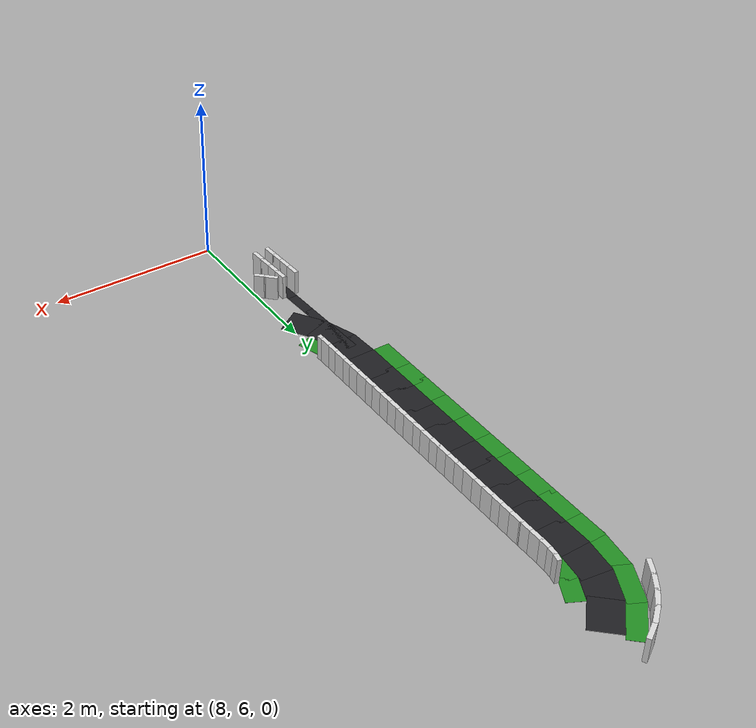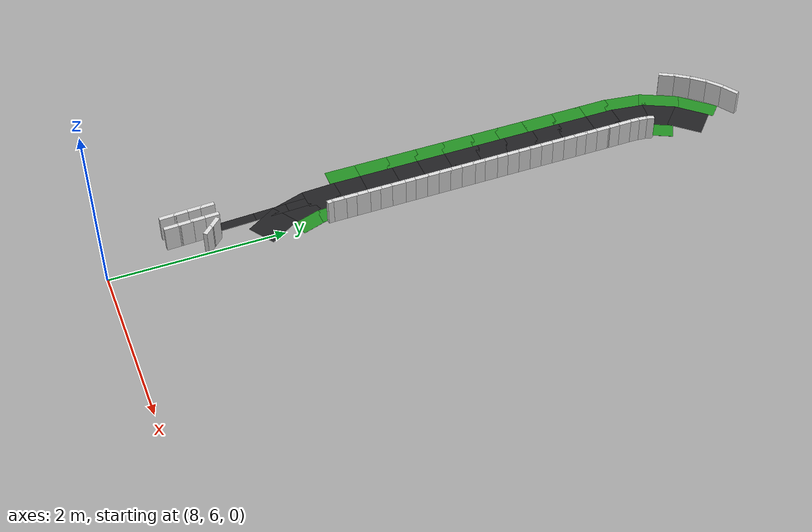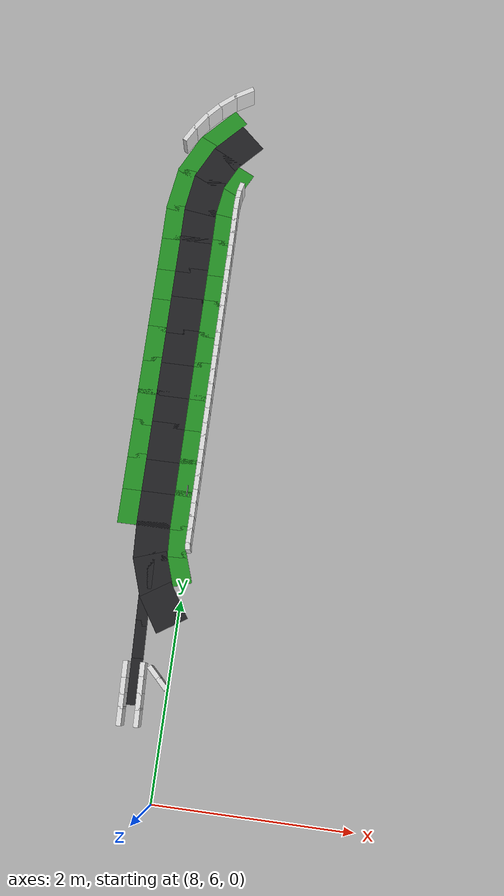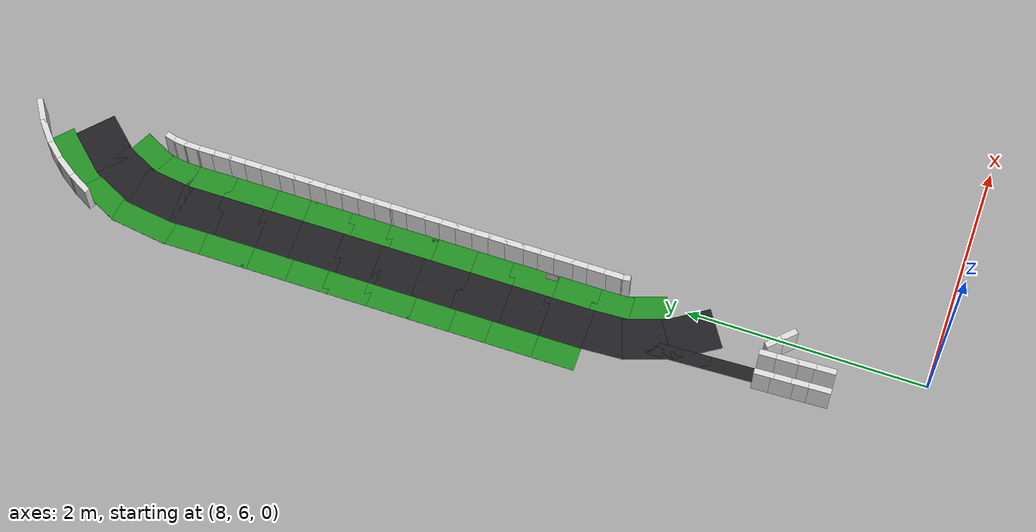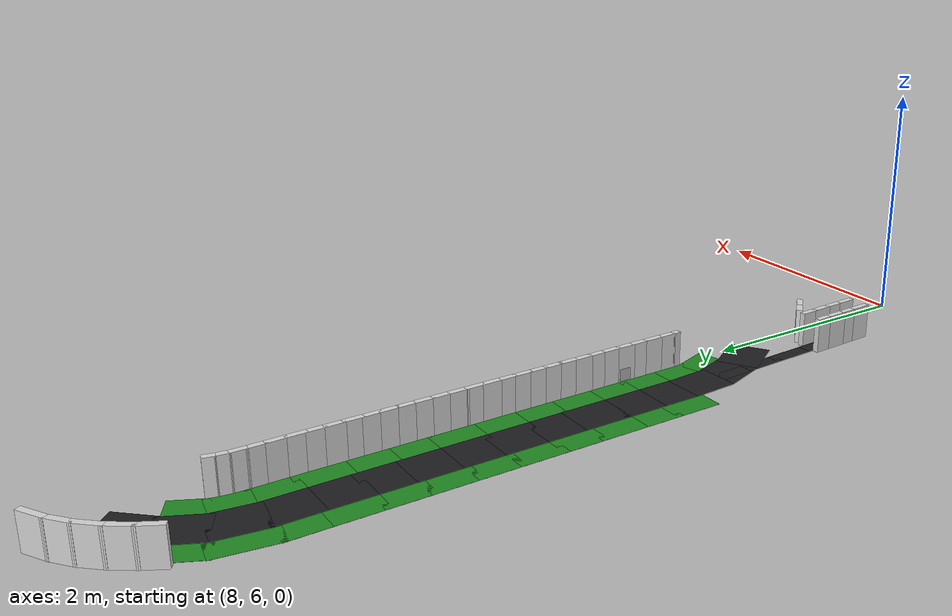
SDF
<sdf version="1.8">
 <world name="it_arena_track">
  <model name="it_arena_track_static">
   <static>true</static>
   <link name="surface_main_24">
    <pose>7.9023 13.0302 0.0015 0 0 -2.31350</pose>
    <collision name="surface_main_24_col">
     <geometry><box><size>0.4117 0.3500 0.0030</size></box></geometry>
    </collision>
    <visual name="surface_main_24_vis">
     <geometry><box><size>0.4117 0.3500 0.0030</size></box></geometry>
     <material><ambient>0.12 0.12 0.13 1</ambient><diffuse>0.12 0.12 0.13 1</diffuse></material>
    </visual>
   </link>
   <link name="surface_main_25">
    <pose>7.7069 12.7462 0.0015 0 0 -2.02534</pose>
    <collision name="surface_main_25_col">
     <geometry><box><size>0.3897 0.3500 0.0030</size></box></geometry>
    </collision>
    <visual name="surface_main_25_vis">
     <geometry><box><size>0.3897 0.3500 0.0030</size></box></geometry>
     <material><ambient>0.12 0.12 0.13 1</ambient><diffuse>0.12 0.12 0.13 1</diffuse></material>
    </visual>
   </link>
   <link name="surface_main_26">
    <pose>7.6086 12.4162 0.0015 0 0 -1.70455</pose>
    <collision name="surface_main_26_col">
     <geometry><box><size>0.4124 0.3500 0.0030</size></box></geometry>
    </collision>
    <visual name="surface_main_26_vis">
     <geometry><box><size>0.4124 0.3500 0.0030</size></box></geometry>
     <material><ambient>0.12 0.12 0.13 1</ambient><diffuse>0.12 0.12 0.13 1</diffuse></material>
    </visual>
   </link>
   <link name="surface_main_27">
    <pose>7.5864 12.0686 0.0015 0 0 -1.56032</pose>
    <collision name="surface_main_27_col">
     <geometry><box><size>0.3909 0.3500 0.0030</size></box></geometry>
    </collision>
    <visual name="surface_main_27_vis">
     <geometry><box><size>0.3909 0.3500 0.0030</size></box></geometry>
     <material><ambient>0.12 0.12 0.13 1</ambient><diffuse>0.12 0.12 0.13 1</diffuse></material>
    </visual>
   </link>
   <link name="surface_main_28">
    <pose>7.5890 11.7186 0.0015 0 0 -1.56635</pose>
    <collision name="surface_main_28_col">
     <geometry><box><size>0.4140 0.3500 0.0030</size></box></geometry>
    </collision>
    <visual name="surface_main_28_vis">
     <geometry><box><size>0.4140 0.3500 0.0030</size></box></geometry>
     <material><ambient>0.12 0.12 0.13 1</ambient><diffuse>0.12 0.12 0.13 1</diffuse></material>
    </visual>
   </link>
   <link name="surface_main_29">
    <pose>7.5905 11.3687 0.0015 0 0 -1.56650</pose>
    <collision name="surface_main_29_col">
     <geometry><box><size>0.3910 0.3500 0.0030</size></box></geometry>
    </collision>
    <visual name="surface_main_29_vis">
     <geometry><box><size>0.3910 0.3500 0.0030</size></box></geometry>
     <material><ambient>0.12 0.12 0.13 1</ambient><diffuse>0.12 0.12 0.13 1</diffuse></material>
    </visual>
   </link>
   <link name="surface_main_30">
    <pose>7.5920 11.0187 0.0015 0 0 -1.56652</pose>
    <collision name="surface_main_30_col">
     <geometry><box><size>0.4140 0.3500 0.0030</size></box></geometry>
    </collision>
    <visual name="surface_main_30_vis">
     <geometry><box><size>0.4140 0.3500 0.0030</size></box></geometry>
     <material><ambient>0.12 0.12 0.13 1</ambient><diffuse>0.12 0.12 0.13 1</diffuse></material>
    </visual>
   </link>
   <link name="surface_main_31">
    <pose>7.5935 10.6688 0.0015 0 0 -1.56650</pose>
    <collision name="surface_main_31_col">
     <geometry><box><size>0.3910 0.3500 0.0030</size></box></geometry>
    </collision>
    <visual name="surface_main_31_vis">
     <geometry><box><size>0.3910 0.3500 0.0030</size></box></geometry>
     <material><ambient>0.12 0.12 0.13 1</ambient><diffuse>0.12 0.12 0.13 1</diffuse></material>
    </visual>
   </link>
   <link name="surface_main_32">
    <pose>7.5950 10.3188 0.0015 0 0 -1.56652</pose>
    <collision name="surface_main_32_col">
     <geometry><box><size>0.4140 0.3500 0.0030</size></box></geometry>
    </collision>
    <visual name="surface_main_32_vis">
     <geometry><box><size>0.4140 0.3500 0.0030</size></box></geometry>
     <material><ambient>0.12 0.12 0.13 1</ambient><diffuse>0.12 0.12 0.13 1</diffuse></material>
    </visual>
   </link>
   <link name="surface_main_33">
    <pose>7.5965 9.9688 0.0015 0 0 -1.56650</pose>
    <collision name="surface_main_33_col">
     <geometry><box><size>0.3910 0.3500 0.0030</size></box></geometry>
    </collision>
    <visual name="surface_main_33_vis">
     <geometry><box><size>0.3910 0.3500 0.0030</size></box></geometry>
     <material><ambient>0.12 0.12 0.13 1</ambient><diffuse>0.12 0.12 0.13 1</diffuse></material>
    </visual>
   </link>
   <link name="surface_main_34">
    <pose>7.5981 9.6189 0.0015 0 0 -1.56636</pose>
    <collision name="surface_main_34_col">
     <geometry><box><size>0.4140 0.3500 0.0030</size></box></geometry>
    </collision>
    <visual name="surface_main_34_vis">
     <geometry><box><size>0.4140 0.3500 0.0030</size></box></geometry>
     <material><ambient>0.12 0.12 0.13 1</ambient><diffuse>0.12 0.12 0.13 1</diffuse></material>
    </visual>
   </link>
   <link name="surface_main_35">
    <pose>7.5996 9.2689 0.0015 0 0 -1.56638</pose>
    <collision name="surface_main_35_col">
     <geometry><box><size>0.3910 0.3500 0.0030</size></box></geometry>
    </collision>
    <visual name="surface_main_35_vis">
     <geometry><box><size>0.3910 0.3500 0.0030</size></box></geometry>
     <material><ambient>0.12 0.12 0.13 1</ambient><diffuse>0.12 0.12 0.13 1</diffuse></material>
    </visual>
   </link>
   <link name="surface_main_36">
    <pose>7.6011 8.9190 0.0015 0 0 -1.56652</pose>
    <collision name="surface_main_36_col">
     <geometry><box><size>0.4140 0.3500 0.0030</size></box></geometry>
    </collision>
    <visual name="surface_main_36_vis">
     <geometry><box><size>0.4140 0.3500 0.0030</size></box></geometry>
     <material><ambient>0.12 0.12 0.13 1</ambient><diffuse>0.12 0.12 0.13 1</diffuse></material>
    </visual>
   </link>
   <link name="surface_main_37">
    <pose>7.6108 8.5697 0.0015 0 0 -1.51822</pose>
    <collision name="surface_main_37_col">
     <geometry><box><size>0.3898 0.3500 0.0030</size></box></geometry>
    </collision>
    <visual name="surface_main_37_vis">
     <geometry><box><size>0.3898 0.3500 0.0030</size></box></geometry>
     <material><ambient>0.12 0.12 0.13 1</ambient><diffuse>0.12 0.12 0.13 1</diffuse></material>
    </visual>
   </link>
   <link name="surface_main_38">
    <pose>7.6775 8.2305 0.0015 0 0 -1.24318</pose>
    <collision name="surface_main_38_col">
     <geometry><box><size>0.4128 0.3500 0.0030</size></box></geometry>
    </collision>
    <visual name="surface_main_38_vis">
     <geometry><box><size>0.4128 0.3500 0.0030</size></box></geometry>
     <material><ambient>0.12 0.12 0.13 1</ambient><diffuse>0.12 0.12 0.13 1</diffuse></material>
    </visual>
   </link>
   <link name="surface_main_39">
    <pose>7.8331 7.9101 0.0015 0 0 -0.99422</pose>
    <collision name="surface_main_39_col">
     <geometry><box><size>0.4129 0.3500 0.0030</size></box></geometry>
    </collision>
    <visual name="surface_main_39_vis">
     <geometry><box><size>0.4129 0.3500 0.0030</size></box></geometry>
     <material><ambient>0.12 0.12 0.13 1</ambient><diffuse>0.12 0.12 0.13 1</diffuse></material>
    </visual>
   </link>
   <link name="surface_branch0_0">
    <pose>7.6114 8.3097 0.0015 0 0 -1.52892</pose>
    <collision name="surface_branch0_0_col">
     <geometry><box><size>0.4623 0.1200 0.0030</size></box></geometry>
    </collision>
    <visual name="surface_branch0_0_vis">
     <geometry><box><size>0.4623 0.1200 0.0030</size></box></geometry>
     <material><ambient>0.12 0.12 0.13 1</ambient><diffuse>0.12 0.12 0.13 1</diffuse></material>
    </visual>
   </link>
   <link name="surface_branch0_1">
    <pose>7.6276 7.9180 0.0015 0 0 -1.53010</pose>
    <collision name="surface_branch0_1_col">
     <geometry><box><size>0.4392 0.1200 0.0030</size></box></geometry>
    </collision>
    <visual name="surface_branch0_1_vis">
     <geometry><box><size>0.4392 0.1200 0.0030</size></box></geometry>
     <material><ambient>0.12 0.12 0.13 1</ambient><diffuse>0.12 0.12 0.13 1</diffuse></material>
    </visual>
   </link>
   <link name="surface_branch0_2">
    <pose>7.6432 7.5364 0.0015 0 0 -1.52997</pose>
    <collision name="surface_branch0_2_col">
     <geometry><box><size>0.4392 0.1200 0.0030</size></box></geometry>
    </collision>
    <visual name="surface_branch0_2_vis">
     <geometry><box><size>0.4392 0.1200 0.0030</size></box></geometry>
     <material><ambient>0.12 0.12 0.13 1</ambient><diffuse>0.12 0.12 0.13 1</diffuse></material>
    </visual>
   </link>
   <link name="surface_branch0_3">
    <pose>7.6594 7.1448 0.0015 0 0 -1.52892</pose>
    <collision name="surface_branch0_3_col">
     <geometry><box><size>0.4623 0.1200 0.0030</size></box></geometry>
    </collision>
    <visual name="surface_branch0_3_vis">
     <geometry><box><size>0.4623 0.1200 0.0030</size></box></geometry>
     <material><ambient>0.12 0.12 0.13 1</ambient><diffuse>0.12 0.12 0.13 1</diffuse></material>
    </visual>
   </link>
   <link name="grass_main_left_25">
    <pose>7.9540 12.6316 0.0010 0 0 -2.03128</pose>
    <collision name="grass_main_left_25_col">
     <geometry><box><size>0.3021 0.2000 0.0020</size></box></geometry>
    </collision>
    <visual name="grass_main_left_25_vis">
     <geometry><box><size>0.3021 0.2000 0.0020</size></box></geometry>
     <material><ambient>0.13 0.55 0.13 1</ambient><diffuse>0.13 0.55 0.13 1</diffuse></material>
    </visual>
   </link>
   <link name="grass_main_left_26">
    <pose>7.8776 12.3746 0.0010 0 0 -1.69908</pose>
    <collision name="grass_main_left_26_col">
     <geometry><box><size>0.3232 0.2000 0.0020</size></box></geometry>
    </collision>
    <visual name="grass_main_left_26_vis">
     <geometry><box><size>0.3232 0.2000 0.0020</size></box></geometry>
     <material><ambient>0.13 0.55 0.13 1</ambient><diffuse>0.13 0.55 0.13 1</diffuse></material>
    </visual>
   </link>
   <link name="grass_main_left_27">
    <pose>7.8614 12.0678 0.0010 0 0 -1.56012</pose>
    <collision name="grass_main_left_27_col">
     <geometry><box><size>0.3852 0.2000 0.0020</size></box></geometry>
    </collision>
    <visual name="grass_main_left_27_vis">
     <geometry><box><size>0.3852 0.2000 0.0020</size></box></geometry>
     <material><ambient>0.13 0.55 0.13 1</ambient><diffuse>0.13 0.55 0.13 1</diffuse></material>
    </visual>
   </link>
   <link name="grass_main_left_28">
    <pose>7.8640 11.7200 0.0010 0 0 -1.56635</pose>
    <collision name="grass_main_left_28_col">
     <geometry><box><size>0.4146 0.2000 0.0020</size></box></geometry>
    </collision>
    <visual name="grass_main_left_28_vis">
     <geometry><box><size>0.4146 0.2000 0.0020</size></box></geometry>
     <material><ambient>0.13 0.55 0.13 1</ambient><diffuse>0.13 0.55 0.13 1</diffuse></material>
    </visual>
   </link>
   <link name="grass_main_left_29">
    <pose>7.8655 11.3698 0.0010 0 0 -1.56650</pose>
    <collision name="grass_main_left_29_col">
     <geometry><box><size>0.3910 0.2000 0.0020</size></box></geometry>
    </collision>
    <visual name="grass_main_left_29_vis">
     <geometry><box><size>0.3910 0.2000 0.0020</size></box></geometry>
     <material><ambient>0.13 0.55 0.13 1</ambient><diffuse>0.13 0.55 0.13 1</diffuse></material>
    </visual>
   </link>
   <link name="grass_main_left_30">
    <pose>7.8670 11.0198 0.0010 0 0 -1.56652</pose>
    <collision name="grass_main_left_30_col">
     <geometry><box><size>0.4140 0.2000 0.0020</size></box></geometry>
    </collision>
    <visual name="grass_main_left_30_vis">
     <geometry><box><size>0.4140 0.2000 0.0020</size></box></geometry>
     <material><ambient>0.13 0.55 0.13 1</ambient><diffuse>0.13 0.55 0.13 1</diffuse></material>
    </visual>
   </link>
   <link name="grass_main_left_31">
    <pose>7.8685 10.6699 0.0010 0 0 -1.56650</pose>
    <collision name="grass_main_left_31_col">
     <geometry><box><size>0.3910 0.2000 0.0020</size></box></geometry>
    </collision>
    <visual name="grass_main_left_31_vis">
     <geometry><box><size>0.3910 0.2000 0.0020</size></box></geometry>
     <material><ambient>0.13 0.55 0.13 1</ambient><diffuse>0.13 0.55 0.13 1</diffuse></material>
    </visual>
   </link>
   <link name="grass_main_left_32">
    <pose>7.8700 10.3199 0.0010 0 0 -1.56652</pose>
    <collision name="grass_main_left_32_col">
     <geometry><box><size>0.4140 0.2000 0.0020</size></box></geometry>
    </collision>
    <visual name="grass_main_left_32_vis">
     <geometry><box><size>0.4140 0.2000 0.0020</size></box></geometry>
     <material><ambient>0.13 0.55 0.13 1</ambient><diffuse>0.13 0.55 0.13 1</diffuse></material>
    </visual>
   </link>
   <link name="grass_main_left_33">
    <pose>7.8715 9.9699 0.0010 0 0 -1.56650</pose>
    <collision name="grass_main_left_33_col">
     <geometry><box><size>0.3910 0.2000 0.0020</size></box></geometry>
    </collision>
    <visual name="grass_main_left_33_vis">
     <geometry><box><size>0.3910 0.2000 0.0020</size></box></geometry>
     <material><ambient>0.13 0.55 0.13 1</ambient><diffuse>0.13 0.55 0.13 1</diffuse></material>
    </visual>
   </link>
   <link name="grass_main_left_34">
    <pose>7.8731 9.6203 0.0010 0 0 -1.56636</pose>
    <collision name="grass_main_left_34_col">
     <geometry><box><size>0.4133 0.2000 0.0020</size></box></geometry>
    </collision>
    <visual name="grass_main_left_34_vis">
     <geometry><box><size>0.4133 0.2000 0.0020</size></box></geometry>
     <material><ambient>0.13 0.55 0.13 1</ambient><diffuse>0.13 0.55 0.13 1</diffuse></material>
    </visual>
   </link>
   <link name="grass_main_left_35">
    <pose>7.8746 9.2703 0.0010 0 0 -1.56638</pose>
    <collision name="grass_main_left_35_col">
     <geometry><box><size>0.3916 0.2000 0.0020</size></box></geometry>
    </collision>
    <visual name="grass_main_left_35_vis">
     <geometry><box><size>0.3916 0.2000 0.0020</size></box></geometry>
     <material><ambient>0.13 0.55 0.13 1</ambient><diffuse>0.13 0.55 0.13 1</diffuse></material>
    </visual>
   </link>
   <link name="grass_main_left_36">
    <pose>7.8761 8.9201 0.0010 0 0 -1.56652</pose>
    <collision name="grass_main_left_36_col">
     <geometry><box><size>0.4140 0.2000 0.0020</size></box></geometry>
    </collision>
    <visual name="grass_main_left_36_vis">
     <geometry><box><size>0.4140 0.2000 0.0020</size></box></geometry>
     <material><ambient>0.13 0.55 0.13 1</ambient><diffuse>0.13 0.55 0.13 1</diffuse></material>
    </visual>
   </link>
   <link name="grass_main_left_37">
    <pose>7.8830 8.5978 0.0010 0 0 -1.52776</pose>
    <collision name="grass_main_left_37_col">
     <geometry><box><size>0.3276 0.2000 0.0020</size></box></geometry>
    </collision>
    <visual name="grass_main_left_37_vis">
     <geometry><box><size>0.3276 0.2000 0.0020</size></box></geometry>
     <material><ambient>0.13 0.55 0.13 1</ambient><diffuse>0.13 0.55 0.13 1</diffuse></material>
    </visual>
   </link>
   <link name="grass_main_left_38">
    <pose>7.9355 8.3189 0.0010 0 0 -1.24374</pose>
    <collision name="grass_main_left_38_col">
     <geometry><box><size>0.3319 0.2000 0.0020</size></box></geometry>
    </collision>
    <visual name="grass_main_left_38_vis">
     <geometry><box><size>0.3319 0.2000 0.0020</size></box></geometry>
     <material><ambient>0.13 0.55 0.13 1</ambient><diffuse>0.13 0.55 0.13 1</diffuse></material>
    </visual>
   </link>
   <link name="grass_main_right_24">
    <pose>7.7028 13.2137 0.0010 0 0 -2.31367</pose>
    <collision name="grass_main_right_24_col">
     <geometry><box><size>0.5190 0.2000 0.0020</size></box></geometry>
    </collision>
    <visual name="grass_main_right_24_vis">
     <geometry><box><size>0.5190 0.2000 0.0020</size></box></geometry>
     <material><ambient>0.13 0.55 0.13 1</ambient><diffuse>0.13 0.55 0.13 1</diffuse></material>
    </visual>
   </link>
   <link name="grass_main_right_25">
    <pose>7.4598 12.8607 0.0010 0 0 -2.02158</pose>
    <collision name="grass_main_right_25_col">
     <geometry><box><size>0.4773 0.2000 0.0020</size></box></geometry>
    </collision>
    <visual name="grass_main_right_25_vis">
     <geometry><box><size>0.4773 0.2000 0.0020</size></box></geometry>
     <material><ambient>0.13 0.55 0.13 1</ambient><diffuse>0.13 0.55 0.13 1</diffuse></material>
    </visual>
   </link>
   <link name="grass_main_right_26">
    <pose>7.3395 12.4579 0.0010 0 0 -1.70808</pose>
    <collision name="grass_main_right_26_col">
     <geometry><box><size>0.5016 0.2000 0.0020</size></box></geometry>
    </collision>
    <visual name="grass_main_right_26_vis">
     <geometry><box><size>0.5016 0.2000 0.0020</size></box></geometry>
     <material><ambient>0.13 0.55 0.13 1</ambient><diffuse>0.13 0.55 0.13 1</diffuse></material>
    </visual>
   </link>
   <link name="grass_main_right_27">
    <pose>7.3114 12.0694 0.0010 0 0 -1.56051</pose>
    <collision name="grass_main_right_27_col">
     <geometry><box><size>0.3967 0.2000 0.0020</size></box></geometry>
    </collision>
    <visual name="grass_main_right_27_vis">
     <geometry><box><size>0.3967 0.2000 0.0020</size></box></geometry>
     <material><ambient>0.13 0.55 0.13 1</ambient><diffuse>0.13 0.55 0.13 1</diffuse></material>
    </visual>
   </link>
   <link name="grass_main_right_28">
    <pose>7.3140 11.7172 0.0010 0 0 -1.56635</pose>
    <collision name="grass_main_right_28_col">
     <geometry><box><size>0.4133 0.2000 0.0020</size></box></geometry>
    </collision>
    <visual name="grass_main_right_28_vis">
     <geometry><box><size>0.4133 0.2000 0.0020</size></box></geometry>
     <material><ambient>0.13 0.55 0.13 1</ambient><diffuse>0.13 0.55 0.13 1</diffuse></material>
    </visual>
   </link>
   <link name="grass_main_right_29">
    <pose>7.3155 11.3676 0.0010 0 0 -1.56650</pose>
    <collision name="grass_main_right_29_col">
     <geometry><box><size>0.3910 0.2000 0.0020</size></box></geometry>
    </collision>
    <visual name="grass_main_right_29_vis">
     <geometry><box><size>0.3910 0.2000 0.0020</size></box></geometry>
     <material><ambient>0.13 0.55 0.13 1</ambient><diffuse>0.13 0.55 0.13 1</diffuse></material>
    </visual>
   </link>
   <link name="grass_main_right_30">
    <pose>7.3170 11.0176 0.0010 0 0 -1.56652</pose>
    <collision name="grass_main_right_30_col">
     <geometry><box><size>0.4140 0.2000 0.0020</size></box></geometry>
    </collision>
    <visual name="grass_main_right_30_vis">
     <geometry><box><size>0.4140 0.2000 0.0020</size></box></geometry>
     <material><ambient>0.13 0.55 0.13 1</ambient><diffuse>0.13 0.55 0.13 1</diffuse></material>
    </visual>
   </link>
   <link name="grass_main_right_31">
    <pose>7.3185 10.6677 0.0010 0 0 -1.56650</pose>
    <collision name="grass_main_right_31_col">
     <geometry><box><size>0.3910 0.2000 0.0020</size></box></geometry>
    </collision>
    <visual name="grass_main_right_31_vis">
     <geometry><box><size>0.3910 0.2000 0.0020</size></box></geometry>
     <material><ambient>0.13 0.55 0.13 1</ambient><diffuse>0.13 0.55 0.13 1</diffuse></material>
    </visual>
   </link>
   <link name="grass_main_right_32">
    <pose>7.3200 10.3177 0.0010 0 0 -1.56652</pose>
    <collision name="grass_main_right_32_col">
     <geometry><box><size>0.4140 0.2000 0.0020</size></box></geometry>
    </collision>
    <visual name="grass_main_right_32_vis">
     <geometry><box><size>0.4140 0.2000 0.0020</size></box></geometry>
     <material><ambient>0.13 0.55 0.13 1</ambient><diffuse>0.13 0.55 0.13 1</diffuse></material>
    </visual>
   </link>
   <link name="grass_main_right_33">
    <pose>7.3215 9.9677 0.0010 0 0 -1.56650</pose>
    <collision name="grass_main_right_33_col">
     <geometry><box><size>0.3910 0.2000 0.0020</size></box></geometry>
    </collision>
    <visual name="grass_main_right_33_vis">
     <geometry><box><size>0.3910 0.2000 0.0020</size></box></geometry>
     <material><ambient>0.13 0.55 0.13 1</ambient><diffuse>0.13 0.55 0.13 1</diffuse></material>
    </visual>
   </link>
   <link name="grass_main_right_34">
    <pose>7.3231 9.6175 0.0010 0 0 -1.56636</pose>
    <collision name="grass_main_right_34_col">
     <geometry><box><size>0.4146 0.2000 0.0020</size></box></geometry>
    </collision>
    <visual name="grass_main_right_34_vis">
     <geometry><box><size>0.4146 0.2000 0.0020</size></box></geometry>
     <material><ambient>0.13 0.55 0.13 1</ambient><diffuse>0.13 0.55 0.13 1</diffuse></material>
    </visual>
   </link>
   <link name="grass_main_right_35">
    <pose>7.3246 9.2675 0.0010 0 0 -1.56638</pose>
    <collision name="grass_main_right_35_col">
     <geometry><box><size>0.3903 0.2000 0.0020</size></box></geometry>
    </collision>
    <visual name="grass_main_right_35_vis">
     <geometry><box><size>0.3903 0.2000 0.0020</size></box></geometry>
     <material><ambient>0.13 0.55 0.13 1</ambient><diffuse>0.13 0.55 0.13 1</diffuse></material>
    </visual>
   </link>
   <link name="grass_main_right_36">
    <pose>7.3261 8.9179 0.0010 0 0 -1.56652</pose>
    <collision name="grass_main_right_36_col">
     <geometry><box><size>0.4139 0.2000 0.0020</size></box></geometry>
    </collision>
    <visual name="grass_main_right_36_vis">
     <geometry><box><size>0.4139 0.2000 0.0020</size></box></geometry>
     <material><ambient>0.13 0.55 0.13 1</ambient><diffuse>0.13 0.55 0.13 1</diffuse></material>
    </visual>
   </link>
   <link name="walls_main_left_65">
    <pose>8.0079 12.4467 0.1500 0 0 -1.81431</pose>
    <collision name="walls_main_left_65_col">
     <geometry><box><size>0.0955 0.0500 0.3000</size></box></geometry>
     <surface><friction><ode><mu>0.8</mu><mu2>0.8</mu2></ode></friction></surface>
    </collision>
    <visual name="walls_main_left_65_vis">
     <geometry><box><size>0.0955 0.0500 0.3000</size></box></geometry>
     <material><ambient>0.85 0.85 0.85 1</ambient><diffuse>0.85 0.85 0.85 1</diffuse></material>
    </visual>
   </link>
   <link name="walls_main_left_66">
    <pose>7.9926 12.3592 0.1500 0 0 -1.68256</pose>
    <collision name="walls_main_left_66_col">
     <geometry><box><size>0.1092 0.0500 0.3000</size></box></geometry>
     <surface><friction><ode><mu>0.8</mu><mu2>0.8</mu2></ode></friction></surface>
    </collision>
    <visual name="walls_main_left_66_vis">
     <geometry><box><size>0.1092 0.0500 0.3000</size></box></geometry>
     <material><ambient>0.85 0.85 0.85 1</ambient><diffuse>0.85 0.85 0.85 1</diffuse></material>
    </visual>
   </link>
   <link name="walls_main_left_67">
    <pose>7.9859 12.2556 0.1500 0 0 -1.59622</pose>
    <collision name="walls_main_left_67_col">
     <geometry><box><size>0.1298 0.0500 0.3000</size></box></geometry>
     <surface><friction><ode><mu>0.8</mu><mu2>0.8</mu2></ode></friction></surface>
    </collision>
    <visual name="walls_main_left_67_vis">
     <geometry><box><size>0.1298 0.0500 0.3000</size></box></geometry>
     <material><ambient>0.85 0.85 0.85 1</ambient><diffuse>0.85 0.85 0.85 1</diffuse></material>
    </visual>
   </link>
   <link name="walls_main_left_68">
    <pose>7.9853 12.1325 0.1500 0 0 -1.55836</pose>
    <collision name="walls_main_left_68_col">
     <geometry><box><size>0.1535 0.0500 0.3000</size></box></geometry>
     <surface><friction><ode><mu>0.8</mu><mu2>0.8</mu2></ode></friction></surface>
    </collision>
    <visual name="walls_main_left_68_vis">
     <geometry><box><size>0.1535 0.0500 0.3000</size></box></geometry>
     <material><ambient>0.85 0.85 0.85 1</ambient><diffuse>0.85 0.85 0.85 1</diffuse></material>
    </visual>
   </link>
   <link name="walls_main_left_69">
    <pose>7.9871 11.9938 0.1500 0 0 -1.55705</pose>
    <collision name="walls_main_left_69_col">
     <geometry><box><size>0.1655 0.0500 0.3000</size></box></geometry>
     <surface><friction><ode><mu>0.8</mu><mu2>0.8</mu2></ode></friction></surface>
    </collision>
    <visual name="walls_main_left_69_vis">
     <geometry><box><size>0.1655 0.0500 0.3000</size></box></geometry>
     <material><ambient>0.85 0.85 0.85 1</ambient><diffuse>0.85 0.85 0.85 1</diffuse></material>
    </visual>
   </link>
   <link name="walls_main_left_70">
    <pose>7.9884 11.8510 0.1500 0 0 -1.56602</pose>
    <collision name="walls_main_left_70_col">
     <geometry><box><size>0.1629 0.0500 0.3000</size></box></geometry>
     <surface><friction><ode><mu>0.8</mu><mu2>0.8</mu2></ode></friction></surface>
    </collision>
    <visual name="walls_main_left_70_vis">
     <geometry><box><size>0.1629 0.0500 0.3000</size></box></geometry>
     <material><ambient>0.85 0.85 0.85 1</ambient><diffuse>0.85 0.85 0.85 1</diffuse></material>
    </visual>
   </link>
   <link name="walls_main_left_71">
    <pose>7.9890 11.7102 0.1500 0 0 -1.56680</pose>
    <collision name="walls_main_left_71_col">
     <geometry><box><size>0.1610 0.0500 0.3000</size></box></geometry>
     <surface><friction><ode><mu>0.8</mu><mu2>0.8</mu2></ode></friction></surface>
    </collision>
    <visual name="walls_main_left_71_vis">
     <geometry><box><size>0.1610 0.0500 0.3000</size></box></geometry>
     <material><ambient>0.85 0.85 0.85 1</ambient><diffuse>0.85 0.85 0.85 1</diffuse></material>
    </visual>
   </link>
   <link name="walls_main_left_72">
    <pose>7.9896 11.5702 0.1500 0 0 -1.56608</pose>
    <collision name="walls_main_left_72_col">
     <geometry><box><size>0.1610 0.0500 0.3000</size></box></geometry>
     <surface><friction><ode><mu>0.8</mu><mu2>0.8</mu2></ode></friction></surface>
    </collision>
    <visual name="walls_main_left_72_vis">
     <geometry><box><size>0.1610 0.0500 0.3000</size></box></geometry>
     <material><ambient>0.85 0.85 0.85 1</ambient><diffuse>0.85 0.85 0.85 1</diffuse></material>
    </visual>
   </link>
   <link name="walls_main_left_73">
    <pose>7.9903 11.4303 0.1500 0 0 -1.56680</pose>
    <collision name="walls_main_left_73_col">
     <geometry><box><size>0.1610 0.0500 0.3000</size></box></geometry>
     <surface><friction><ode><mu>0.8</mu><mu2>0.8</mu2></ode></friction></surface>
    </collision>
    <visual name="walls_main_left_73_vis">
     <geometry><box><size>0.1610 0.0500 0.3000</size></box></geometry>
     <material><ambient>0.85 0.85 0.85 1</ambient><diffuse>0.85 0.85 0.85 1</diffuse></material>
    </visual>
   </link>
   <link name="walls_main_left_74">
    <pose>7.9909 11.2903 0.1500 0 0 -1.56608</pose>
    <collision name="walls_main_left_74_col">
     <geometry><box><size>0.1610 0.0500 0.3000</size></box></geometry>
     <surface><friction><ode><mu>0.8</mu><mu2>0.8</mu2></ode></friction></surface>
    </collision>
    <visual name="walls_main_left_74_vis">
     <geometry><box><size>0.1610 0.0500 0.3000</size></box></geometry>
     <material><ambient>0.85 0.85 0.85 1</ambient><diffuse>0.85 0.85 0.85 1</diffuse></material>
    </visual>
   </link>
   <link name="walls_main_left_75">
    <pose>7.9915 11.1503 0.1500 0 0 -1.56680</pose>
    <collision name="walls_main_left_75_col">
     <geometry><box><size>0.1610 0.0500 0.3000</size></box></geometry>
     <surface><friction><ode><mu>0.8</mu><mu2>0.8</mu2></ode></friction></surface>
    </collision>
    <visual name="walls_main_left_75_vis">
     <geometry><box><size>0.1610 0.0500 0.3000</size></box></geometry>
     <material><ambient>0.85 0.85 0.85 1</ambient><diffuse>0.85 0.85 0.85 1</diffuse></material>
    </visual>
   </link>
   <link name="walls_main_left_76">
    <pose>7.9921 11.0103 0.1500 0 0 -1.56608</pose>
    <collision name="walls_main_left_76_col">
     <geometry><box><size>0.1610 0.0500 0.3000</size></box></geometry>
     <surface><friction><ode><mu>0.8</mu><mu2>0.8</mu2></ode></friction></surface>
    </collision>
    <visual name="walls_main_left_76_vis">
     <geometry><box><size>0.1610 0.0500 0.3000</size></box></geometry>
     <material><ambient>0.85 0.85 0.85 1</ambient><diffuse>0.85 0.85 0.85 1</diffuse></material>
    </visual>
   </link>
   <link name="walls_main_left_77">
    <pose>7.9927 10.8703 0.1500 0 0 -1.56680</pose>
    <collision name="walls_main_left_77_col">
     <geometry><box><size>0.1610 0.0500 0.3000</size></box></geometry>
     <surface><friction><ode><mu>0.8</mu><mu2>0.8</mu2></ode></friction></surface>
    </collision>
    <visual name="walls_main_left_77_vis">
     <geometry><box><size>0.1610 0.0500 0.3000</size></box></geometry>
     <material><ambient>0.85 0.85 0.85 1</ambient><diffuse>0.85 0.85 0.85 1</diffuse></material>
    </visual>
   </link>
   <link name="walls_main_left_78">
    <pose>7.9933 10.7305 0.1500 0 0 -1.56608</pose>
    <collision name="walls_main_left_78_col">
     <geometry><box><size>0.1607 0.0500 0.3000</size></box></geometry>
     <surface><friction><ode><mu>0.8</mu><mu2>0.8</mu2></ode></friction></surface>
    </collision>
    <visual name="walls_main_left_78_vis">
     <geometry><box><size>0.1607 0.0500 0.3000</size></box></geometry>
     <material><ambient>0.85 0.85 0.85 1</ambient><diffuse>0.85 0.85 0.85 1</diffuse></material>
    </visual>
   </link>
   <link name="walls_main_left_79">
    <pose>7.9939 10.5905 0.1500 0 0 -1.56680</pose>
    <collision name="walls_main_left_79_col">
     <geometry><box><size>0.1612 0.0500 0.3000</size></box></geometry>
     <surface><friction><ode><mu>0.8</mu><mu2>0.8</mu2></ode></friction></surface>
    </collision>
    <visual name="walls_main_left_79_vis">
     <geometry><box><size>0.1612 0.0500 0.3000</size></box></geometry>
     <material><ambient>0.85 0.85 0.85 1</ambient><diffuse>0.85 0.85 0.85 1</diffuse></material>
    </visual>
   </link>
   <link name="walls_main_left_80">
    <pose>7.9945 10.4507 0.1500 0 0 -1.56624</pose>
    <collision name="walls_main_left_80_col">
     <geometry><box><size>0.1603 0.0500 0.3000</size></box></geometry>
     <surface><friction><ode><mu>0.8</mu><mu2>0.8</mu2></ode></friction></surface>
    </collision>
    <visual name="walls_main_left_80_vis">
     <geometry><box><size>0.1603 0.0500 0.3000</size></box></geometry>
     <material><ambient>0.85 0.85 0.85 1</ambient><diffuse>0.85 0.85 0.85 1</diffuse></material>
    </visual>
   </link>
   <link name="walls_main_left_81">
    <pose>7.9951 10.3107 0.1500 0 0 -1.56663</pose>
    <collision name="walls_main_left_81_col">
     <geometry><box><size>0.1617 0.0500 0.3000</size></box></geometry>
     <surface><friction><ode><mu>0.8</mu><mu2>0.8</mu2></ode></friction></surface>
    </collision>
    <visual name="walls_main_left_81_vis">
     <geometry><box><size>0.1617 0.0500 0.3000</size></box></geometry>
     <material><ambient>0.85 0.85 0.85 1</ambient><diffuse>0.85 0.85 0.85 1</diffuse></material>
    </visual>
   </link>
   <link name="walls_main_left_82">
    <pose>7.9957 10.1704 0.1500 0 0 -1.56680</pose>
    <collision name="walls_main_left_82_col">
     <geometry><box><size>0.1610 0.0500 0.3000</size></box></geometry>
     <surface><friction><ode><mu>0.8</mu><mu2>0.8</mu2></ode></friction></surface>
    </collision>
    <visual name="walls_main_left_82_vis">
     <geometry><box><size>0.1610 0.0500 0.3000</size></box></geometry>
     <material><ambient>0.85 0.85 0.85 1</ambient><diffuse>0.85 0.85 0.85 1</diffuse></material>
    </visual>
   </link>
   <link name="walls_main_left_83">
    <pose>7.9963 10.0304 0.1500 0 0 -1.56608</pose>
    <collision name="walls_main_left_83_col">
     <geometry><box><size>0.1610 0.0500 0.3000</size></box></geometry>
     <surface><friction><ode><mu>0.8</mu><mu2>0.8</mu2></ode></friction></surface>
    </collision>
    <visual name="walls_main_left_83_vis">
     <geometry><box><size>0.1610 0.0500 0.3000</size></box></geometry>
     <material><ambient>0.85 0.85 0.85 1</ambient><diffuse>0.85 0.85 0.85 1</diffuse></material>
    </visual>
   </link>
   <link name="walls_main_left_84">
    <pose>7.9969 9.8904 0.1500 0 0 -1.56680</pose>
    <collision name="walls_main_left_84_col">
     <geometry><box><size>0.1610 0.0500 0.3000</size></box></geometry>
     <surface><friction><ode><mu>0.8</mu><mu2>0.8</mu2></ode></friction></surface>
    </collision>
    <visual name="walls_main_left_84_vis">
     <geometry><box><size>0.1610 0.0500 0.3000</size></box></geometry>
     <material><ambient>0.85 0.85 0.85 1</ambient><diffuse>0.85 0.85 0.85 1</diffuse></material>
    </visual>
   </link>
   <link name="walls_main_left_85">
    <pose>7.9975 9.7505 0.1500 0 0 -1.56608</pose>
    <collision name="walls_main_left_85_col">
     <geometry><box><size>0.1610 0.0500 0.3000</size></box></geometry>
     <surface><friction><ode><mu>0.8</mu><mu2>0.8</mu2></ode></friction></surface>
    </collision>
    <visual name="walls_main_left_85_vis">
     <geometry><box><size>0.1610 0.0500 0.3000</size></box></geometry>
     <material><ambient>0.85 0.85 0.85 1</ambient><diffuse>0.85 0.85 0.85 1</diffuse></material>
    </visual>
   </link>
   <link name="walls_main_left_86">
    <pose>7.9981 9.6105 0.1500 0 0 -1.56680</pose>
    <collision name="walls_main_left_86_col">
     <geometry><box><size>0.1610 0.0500 0.3000</size></box></geometry>
     <surface><friction><ode><mu>0.8</mu><mu2>0.8</mu2></ode></friction></surface>
    </collision>
    <visual name="walls_main_left_86_vis">
     <geometry><box><size>0.1610 0.0500 0.3000</size></box></geometry>
     <material><ambient>0.85 0.85 0.85 1</ambient><diffuse>0.85 0.85 0.85 1</diffuse></material>
    </visual>
   </link>
   <link name="walls_main_left_87">
    <pose>7.9987 9.4705 0.1500 0 0 -1.56608</pose>
    <collision name="walls_main_left_87_col">
     <geometry><box><size>0.1610 0.0500 0.3000</size></box></geometry>
     <surface><friction><ode><mu>0.8</mu><mu2>0.8</mu2></ode></friction></surface>
    </collision>
    <visual name="walls_main_left_87_vis">
     <geometry><box><size>0.1610 0.0500 0.3000</size></box></geometry>
     <material><ambient>0.85 0.85 0.85 1</ambient><diffuse>0.85 0.85 0.85 1</diffuse></material>
    </visual>
   </link>
   <link name="walls_main_left_88">
    <pose>7.9994 9.3305 0.1500 0 0 -1.56680</pose>
    <collision name="walls_main_left_88_col">
     <geometry><box><size>0.1610 0.0500 0.3000</size></box></geometry>
     <surface><friction><ode><mu>0.8</mu><mu2>0.8</mu2></ode></friction></surface>
    </collision>
    <visual name="walls_main_left_88_vis">
     <geometry><box><size>0.1610 0.0500 0.3000</size></box></geometry>
     <material><ambient>0.85 0.85 0.85 1</ambient><diffuse>0.85 0.85 0.85 1</diffuse></material>
    </visual>
   </link>
   <link name="walls_main_left_89">
    <pose>8.0000 9.1907 0.1500 0 0 -1.56610</pose>
    <collision name="walls_main_left_89_col">
     <geometry><box><size>0.1605 0.0500 0.3000</size></box></geometry>
     <surface><friction><ode><mu>0.8</mu><mu2>0.8</mu2></ode></friction></surface>
    </collision>
    <visual name="walls_main_left_89_vis">
     <geometry><box><size>0.1605 0.0500 0.3000</size></box></geometry>
     <material><ambient>0.85 0.85 0.85 1</ambient><diffuse>0.85 0.85 0.85 1</diffuse></material>
    </visual>
   </link>
   <link name="walls_main_left_90">
    <pose>8.0006 9.0508 0.1500 0 0 -1.56678</pose>
    <collision name="walls_main_left_90_col">
     <geometry><box><size>0.1615 0.0500 0.3000</size></box></geometry>
     <surface><friction><ode><mu>0.8</mu><mu2>0.8</mu2></ode></friction></surface>
    </collision>
    <visual name="walls_main_left_90_vis">
     <geometry><box><size>0.1615 0.0500 0.3000</size></box></geometry>
     <material><ambient>0.85 0.85 0.85 1</ambient><diffuse>0.85 0.85 0.85 1</diffuse></material>
    </visual>
   </link>
   <link name="walls_main_left_91">
    <pose>8.0012 8.9110 0.1500 0 0 -1.56639</pose>
    <collision name="walls_main_left_91_col">
     <geometry><box><size>0.1601 0.0500 0.3000</size></box></geometry>
     <surface><friction><ode><mu>0.8</mu><mu2>0.8</mu2></ode></friction></surface>
    </collision>
    <visual name="walls_main_left_91_vis">
     <geometry><box><size>0.1601 0.0500 0.3000</size></box></geometry>
     <material><ambient>0.85 0.85 0.85 1</ambient><diffuse>0.85 0.85 0.85 1</diffuse></material>
    </visual>
   </link>
   <link name="walls_main_left_92">
    <pose>8.0018 8.7710 0.1500 0 0 -1.56649</pose>
    <collision name="walls_main_left_92_col">
     <geometry><box><size>0.1619 0.0500 0.3000</size></box></geometry>
     <surface><friction><ode><mu>0.8</mu><mu2>0.8</mu2></ode></friction></surface>
    </collision>
    <visual name="walls_main_left_92_vis">
     <geometry><box><size>0.1619 0.0500 0.3000</size></box></geometry>
     <material><ambient>0.85 0.85 0.85 1</ambient><diffuse>0.85 0.85 0.85 1</diffuse></material>
    </visual>
   </link>
   <link name="walls_main_left_93">
    <pose>8.0024 8.6312 0.1500 0 0 -1.56656</pose>
    <collision name="walls_main_left_93_col">
     <geometry><box><size>0.1597 0.0500 0.3000</size></box></geometry>
     <surface><friction><ode><mu>0.8</mu><mu2>0.8</mu2></ode></friction></surface>
    </collision>
    <visual name="walls_main_left_93_vis">
     <geometry><box><size>0.1597 0.0500 0.3000</size></box></geometry>
     <material><ambient>0.85 0.85 0.85 1</ambient><diffuse>0.85 0.85 0.85 1</diffuse></material>
    </visual>
   </link>
   <link name="walls_main_left_94">
    <pose>8.0053 8.5303 0.1500 0 0 -1.48768</pose>
    <collision name="walls_main_left_94_col">
     <geometry><box><size>0.0727 0.0500 0.3000</size></box></geometry>
     <surface><friction><ode><mu>0.8</mu><mu2>0.8</mu2></ode></friction></surface>
    </collision>
    <visual name="walls_main_left_94_vis">
     <geometry><box><size>0.0727 0.0500 0.3000</size></box></geometry>
     <material><ambient>0.85 0.85 0.85 1</ambient><diffuse>0.85 0.85 0.85 1</diffuse></material>
    </visual>
   </link>
   <link name="walls_main_right_59">
    <pose>7.8892 13.5501 0.1500 0 0 -2.59090</pose>
    <collision name="walls_main_right_59_col">
     <geometry><box><size>0.2313 0.0500 0.3000</size></box></geometry>
     <surface><friction><ode><mu>0.8</mu><mu2>0.8</mu2></ode></friction></surface>
    </collision>
    <visual name="walls_main_right_59_vis">
     <geometry><box><size>0.2313 0.0500 0.3000</size></box></geometry>
     <material><ambient>0.85 0.85 0.85 1</ambient><diffuse>0.85 0.85 0.85 1</diffuse></material>
    </visual>
   </link>
   <link name="walls_main_right_60">
    <pose>7.7295 13.4354 0.1500 0 0 -2.44415</pose>
    <collision name="walls_main_right_60_col">
     <geometry><box><size>0.2221 0.0500 0.3000</size></box></geometry>
     <surface><friction><ode><mu>0.8</mu><mu2>0.8</mu2></ode></friction></surface>
    </collision>
    <visual name="walls_main_right_60_vis">
     <geometry><box><size>0.2221 0.0500 0.3000</size></box></geometry>
     <material><ambient>0.85 0.85 0.85 1</ambient><diffuse>0.85 0.85 0.85 1</diffuse></material>
    </visual>
   </link>
   <link name="walls_main_right_61">
    <pose>7.5909 13.3014 0.1500 0 0 -2.30203</pose>
    <collision name="walls_main_right_61_col">
     <geometry><box><size>0.2224 0.0500 0.3000</size></box></geometry>
     <surface><friction><ode><mu>0.8</mu><mu2>0.8</mu2></ode></friction></surface>
    </collision>
    <visual name="walls_main_right_61_vis">
     <geometry><box><size>0.2224 0.0500 0.3000</size></box></geometry>
     <material><ambient>0.85 0.85 0.85 1</ambient><diffuse>0.85 0.85 0.85 1</diffuse></material>
    </visual>
   </link>
   <link name="walls_main_right_62">
    <pose>7.4721 13.1506 0.1500 0 0 -2.17294</pose>
    <collision name="walls_main_right_62_col">
     <geometry><box><size>0.2200 0.0500 0.3000</size></box></geometry>
     <surface><friction><ode><mu>0.8</mu><mu2>0.8</mu2></ode></friction></surface>
    </collision>
    <visual name="walls_main_right_62_vis">
     <geometry><box><size>0.2200 0.0500 0.3000</size></box></geometry>
     <material><ambient>0.85 0.85 0.85 1</ambient><diffuse>0.85 0.85 0.85 1</diffuse></material>
    </visual>
   </link>
   <link name="walls_main_right_63">
    <pose>7.3752 12.9950 0.1500 0 0 -2.07819</pose>
    <collision name="walls_main_right_63_col">
     <geometry><box><size>0.2021 0.0500 0.3000</size></box></geometry>
     <surface><friction><ode><mu>0.8</mu><mu2>0.8</mu2></ode></friction></surface>
    </collision>
    <visual name="walls_main_right_63_vis">
     <geometry><box><size>0.2021 0.0500 0.3000</size></box></geometry>
     <material><ambient>0.85 0.85 0.85 1</ambient><diffuse>0.85 0.85 0.85 1</diffuse></material>
    </visual>
   </link>
   <link name="walls_main_right_93">
    <pose>7.8614 7.2511 0.1500 0 0 -0.77901</pose>
    <collision name="walls_main_right_93_col">
     <geometry><box><size>0.1624 0.0500 0.3000</size></box></geometry>
     <surface><friction><ode><mu>0.8</mu><mu2>0.8</mu2></ode></friction></surface>
    </collision>
    <visual name="walls_main_right_93_vis">
     <geometry><box><size>0.1624 0.0500 0.3000</size></box></geometry>
     <material><ambient>0.85 0.85 0.85 1</ambient><diffuse>0.85 0.85 0.85 1</diffuse></material>
    </visual>
   </link>
   <link name="walls_main_right_94">
    <pose>7.9535 7.1585 0.1500 0 0 -0.79912</pose>
    <collision name="walls_main_right_94_col">
     <geometry><box><size>0.1381 0.0500 0.3000</size></box></geometry>
     <surface><friction><ode><mu>0.8</mu><mu2>0.8</mu2></ode></friction></surface>
    </collision>
    <visual name="walls_main_right_94_vis">
     <geometry><box><size>0.1381 0.0500 0.3000</size></box></geometry>
     <material><ambient>0.85 0.85 0.85 1</ambient><diffuse>0.85 0.85 0.85 1</diffuse></material>
    </visual>
   </link>
   <link name="walls_branch0_left_0">
    <pose>7.7395 7.2586 0.1500 0 0 -1.53132</pose>
    <collision name="walls_branch0_left_0_col">
     <geometry><box><size>0.1618 0.0500 0.3000</size></box></geometry>
     <surface><friction><ode><mu>0.8</mu><mu2>0.8</mu2></ode></friction></surface>
    </collision>
    <visual name="walls_branch0_left_0_vis">
     <geometry><box><size>0.1618 0.0500 0.3000</size></box></geometry>
     <material><ambient>0.85 0.85 0.85 1</ambient><diffuse>0.85 0.85 0.85 1</diffuse></material>
    </visual>
   </link>
   <link name="walls_branch0_left_1">
    <pose>7.7455 7.1087 0.1500 0 0 -1.52944</pose>
    <collision name="walls_branch0_left_1_col">
     <geometry><box><size>0.1832 0.0500 0.3000</size></box></geometry>
     <surface><friction><ode><mu>0.8</mu><mu2>0.8</mu2></ode></friction></surface>
    </collision>
    <visual name="walls_branch0_left_1_vis">
     <geometry><box><size>0.1832 0.0500 0.3000</size></box></geometry>
     <material><ambient>0.85 0.85 0.85 1</ambient><diffuse>0.85 0.85 0.85 1</diffuse></material>
    </visual>
   </link>
   <link name="walls_branch0_left_2">
    <pose>7.7520 6.9581 0.1500 0 0 -1.52644</pose>
    <collision name="walls_branch0_left_2_col">
     <geometry><box><size>0.1635 0.0500 0.3000</size></box></geometry>
     <surface><friction><ode><mu>0.8</mu><mu2>0.8</mu2></ode></friction></surface>
    </collision>
    <visual name="walls_branch0_left_2_vis">
     <geometry><box><size>0.1635 0.0500 0.3000</size></box></geometry>
     <material><ambient>0.85 0.85 0.85 1</ambient><diffuse>0.85 0.85 0.85 1</diffuse></material>
    </visual>
   </link>
   <link name="walls_branch0_left_3">
    <pose>7.7583 6.8067 0.1500 0 0 -1.53154</pose>
    <collision name="walls_branch0_left_3_col">
     <geometry><box><size>0.1849 0.0500 0.3000</size></box></geometry>
     <surface><friction><ode><mu>0.8</mu><mu2>0.8</mu2></ode></friction></surface>
    </collision>
    <visual name="walls_branch0_left_3_vis">
     <geometry><box><size>0.1849 0.0500 0.3000</size></box></geometry>
     <material><ambient>0.85 0.85 0.85 1</ambient><diffuse>0.85 0.85 0.85 1</diffuse></material>
    </visual>
   </link>
   <link name="walls_branch0_right_0">
    <pose>7.5696 7.2519 0.1500 0 0 -1.53132</pose>
    <collision name="walls_branch0_right_0_col">
     <geometry><box><size>0.1618 0.0500 0.3000</size></box></geometry>
     <surface><friction><ode><mu>0.8</mu><mu2>0.8</mu2></ode></friction></surface>
    </collision>
    <visual name="walls_branch0_right_0_vis">
     <geometry><box><size>0.1618 0.0500 0.3000</size></box></geometry>
     <material><ambient>0.85 0.85 0.85 1</ambient><diffuse>0.85 0.85 0.85 1</diffuse></material>
    </visual>
   </link>
   <link name="walls_branch0_right_1">
    <pose>7.5757 7.1005 0.1500 0 0 -1.52931</pose>
    <collision name="walls_branch0_right_1_col">
     <geometry><box><size>0.1866 0.0500 0.3000</size></box></geometry>
     <surface><friction><ode><mu>0.8</mu><mu2>0.8</mu2></ode></friction></surface>
    </collision>
    <visual name="walls_branch0_right_1_vis">
     <geometry><box><size>0.1866 0.0500 0.3000</size></box></geometry>
     <material><ambient>0.85 0.85 0.85 1</ambient><diffuse>0.85 0.85 0.85 1</diffuse></material>
    </visual>
   </link>
   <link name="walls_branch0_right_2">
    <pose>7.5822 6.9499 0.1500 0 0 -1.52653</pose>
    <collision name="walls_branch0_right_2_col">
     <geometry><box><size>0.1601 0.0500 0.3000</size></box></geometry>
     <surface><friction><ode><mu>0.8</mu><mu2>0.8</mu2></ode></friction></surface>
    </collision>
    <visual name="walls_branch0_right_2_vis">
     <geometry><box><size>0.1601 0.0500 0.3000</size></box></geometry>
     <material><ambient>0.85 0.85 0.85 1</ambient><diffuse>0.85 0.85 0.85 1</diffuse></material>
    </visual>
   </link>
   <link name="walls_branch0_right_3">
    <pose>7.5884 6.8000 0.1500 0 0 -1.53154</pose>
    <collision name="walls_branch0_right_3_col">
     <geometry><box><size>0.1850 0.0500 0.3000</size></box></geometry>
     <surface><friction><ode><mu>0.8</mu><mu2>0.8</mu2></ode></friction></surface>
    </collision>
    <visual name="walls_branch0_right_3_vis">
     <geometry><box><size>0.1850 0.0500 0.3000</size></box></geometry>
     <material><ambient>0.85 0.85 0.85 1</ambient><diffuse>0.85 0.85 0.85 1</diffuse></material>
    </visual>
   </link>
   <link name="aruco_20">
    <pose>7.9053 9.1190 0.1000 0 0 -3.13661</pose>
    <visual name="aruco_20_vis">
     <geometry><box><size>0.0050 0.1000 0.1000</size></box></geometry>
     <material>
      <pbr><metal><albedo_map>../aruco/aruco_id20.png</albedo_map></metal></pbr>
      <script><uri>../aruco/aruco_id20.png</uri></script>
     </material>
    </visual>
    <collision name="aruco_20_col"><geometry><box><size>0.0050 0.1000 0.1000</size></box></geometry></collision>
   </link>
  </model>
 </world>
</sdf>
